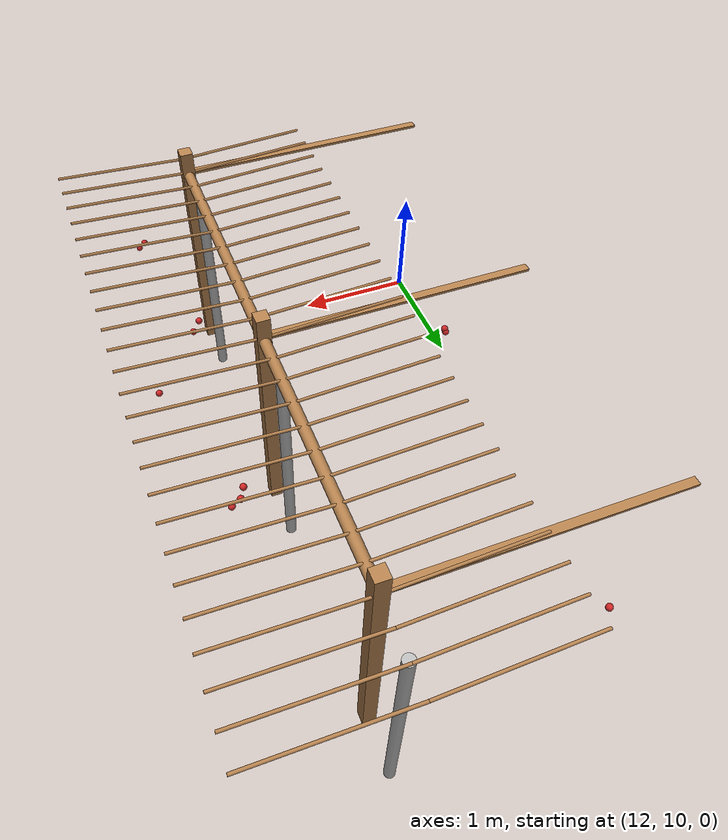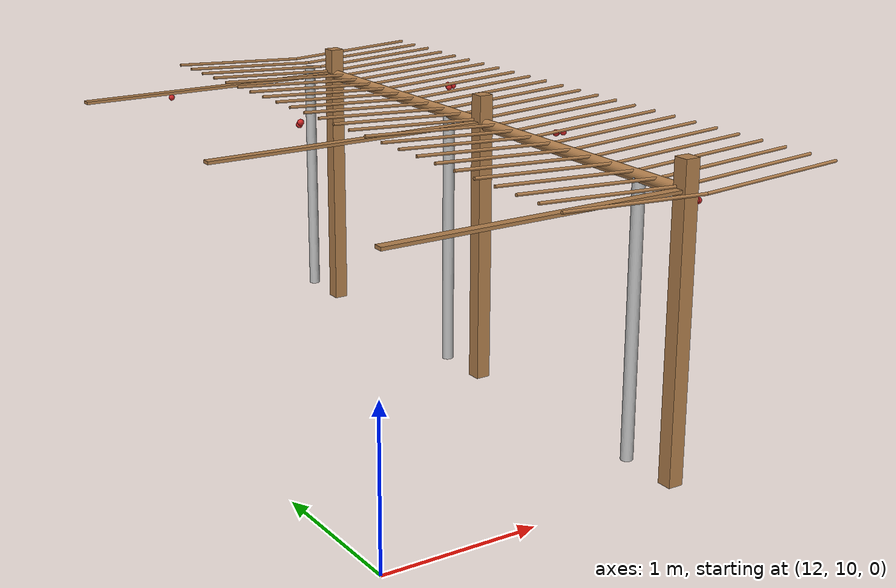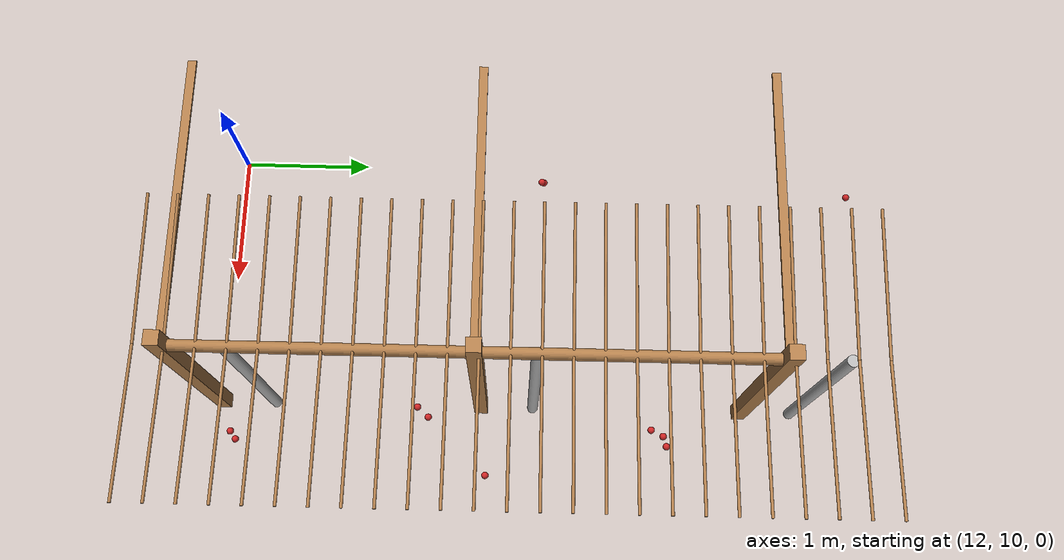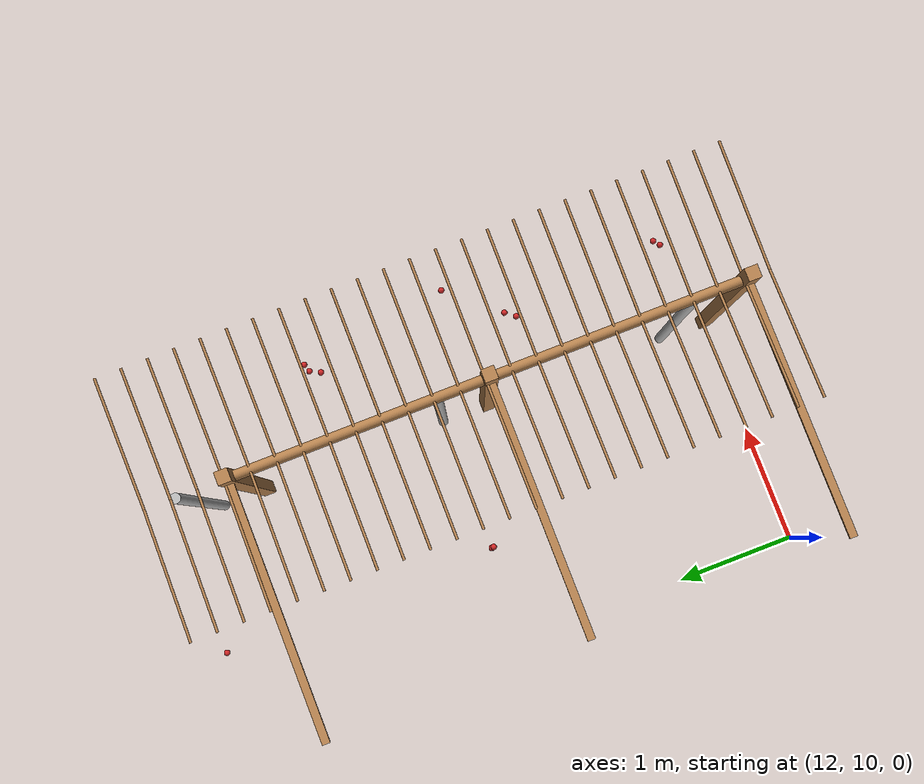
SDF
<sdf version="1.4">
 <model name="pergola">
  <include><name>post_82</name><pose>14.0 10.0 0 0 0 0</pose><uri>model://post</uri></include>
  <include><name>post_83</name><pose>14.0 12.0 0 0 0 0</pose><uri>model://post</uri></include>
  <include><name>post_84</name><pose>14.0 14.0 0 0 0 0</pose><uri>model://post</uri></include>
  <link name="beam_71">
   <pose>13.0 10.0 1.81 0 0 0</pose>
   <collision name="collision"><geometry><box><size>2.0 0.06 0.02</size></box></geometry></collision>
   <visual name="visual">
    <geometry><box><size>2.0 0.06 0.02</size></box></geometry>
    <material><script><name>Gazebo/Wood</name></script></material>
   </visual>
   <inertial>
    <mass>5</mass>
    <inertia>
     <ixx>0.0016666666666666668</ixx>
     <ixy>0.0</ixy>
     <ixz>0.0</ixz>
     <iyy>1.6681666666666664</iyy>
     <iyz>0.0</iyz>
     <izz>1.6668333333333332</izz>
    </inertia>
   </inertial>
  </link>
  <link name="beam_72">
   <pose>13.0 12.0 1.81 0 0 0</pose>
   <collision name="collision"><geometry><box><size>2.0 0.06 0.02</size></box></geometry></collision>
   <visual name="visual">
    <geometry><box><size>2.0 0.06 0.02</size></box></geometry>
    <material><script><name>Gazebo/Wood</name></script></material>
   </visual>
   <inertial>
    <mass>5</mass>
    <inertia>
     <ixx>0.0016666666666666668</ixx>
     <ixy>0.0</ixy>
     <ixz>0.0</ixz>
     <iyy>1.6681666666666664</iyy>
     <iyz>0.0</iyz>
     <izz>1.6668333333333332</izz>
    </inertia>
   </inertial>
  </link>
  <link name="beam_73">
   <pose>13.0 14.0 1.81 0 0 0</pose>
   <collision name="collision"><geometry><box><size>2.0 0.06 0.02</size></box></geometry></collision>
   <visual name="visual">
    <geometry><box><size>2.0 0.06 0.02</size></box></geometry>
    <material><script><name>Gazebo/Wood</name></script></material>
   </visual>
   <inertial>
    <mass>5</mass>
    <inertia>
     <ixx>0.0016666666666666668</ixx>
     <ixy>0.0</ixy>
     <ixz>0.0</ixz>
     <iyy>1.6681666666666664</iyy>
     <iyz>0.0</iyz>
     <izz>1.6668333333333332</izz>
    </inertia>
   </inertial>
  </link>
  <include><name>tree_75</name><pose>14.0 10.4 0 0 0 0</pose><uri>model://tree_trunk</uri></include>
  <include><name>tree_76</name><pose>14.0 12.4 0 0 0 0</pose><uri>model://tree_trunk</uri></include>
  <include><name>tree_77</name><pose>14.0 14.4 0 0 0 0</pose><uri>model://tree_trunk</uri></include>
  <link name="baseBranch_75">
   <pose>14.0 11.0 1.8 1.5707963267948966 0 0</pose>
   <collision name="collision">
    <geometry><cylinder><radius>0.04</radius><length>1.94</length></cylinder></geometry>
   </collision>
   <visual name="visual">
    <geometry><cylinder><radius>0.04</radius><length>1.94</length></cylinder></geometry>
    <material><script><name>Gazebo/WoodFloor</name></script></material>
   </visual>
   <inertial>
    <mass>10</mass>
    <inertia>
     <ixx>3.140333333333333</ixx>
     <ixy>0.0</ixy>
     <ixz>0.0</ixz>
     <iyy>3.140333333333333</iyy>
     <iyz>0.0</iyz>
     <izz>0.008</izz>
    </inertia>
   </inertial>
  </link>
  <link name="baseBranch_76">
   <pose>14.0 13.0 1.8 1.5707963267948966 0 0</pose>
   <collision name="collision">
    <geometry><cylinder><radius>0.04</radius><length>1.94</length></cylinder></geometry>
   </collision>
   <visual name="visual">
    <geometry><cylinder><radius>0.04</radius><length>1.94</length></cylinder></geometry>
    <material><script><name>Gazebo/WoodFloor</name></script></material>
   </visual>
   <inertial>
    <mass>10</mass>
    <inertia>
     <ixx>3.140333333333333</ixx>
     <ixy>0.0</ixy>
     <ixz>0.0</ixz>
     <iyy>3.140333333333333</iyy>
     <iyz>0.0</iyz>
     <izz>0.008</izz>
    </inertia>
   </inertial>
  </link>
  <link name="vine_1299">
   <pose>13.5 9.83 1.85 0 -1.5208379310729538 0</pose>
   <collision name="collision">
    <geometry><cylinder><radius>0.01</radius><length>1.0012492197250393</length></cylinder></geometry>
   </collision>
   <visual name="visual">
    <geometry><cylinder><radius>0.01</radius><length>1.0012492197250393</length></cylinder></geometry>
    <material><script><name>Gazebo/WoodFloor</name></script></material>
   </visual>
   <inertial>
    <mass>5</mass>
    <inertia>
     <ixx>0.41783333333333345</ixx>
     <ixy>0.0</ixy>
     <ixz>0.0</ixz>
     <iyy>0.41783333333333345</iyy>
     <iyz>0.0</iyz>
     <izz>0.00025</izz>
    </inertia>
   </inertial>
  </link>
  <link name="vine_1301">
   <pose>13.5 10.03 1.85 0 -1.5208379310729538 0</pose>
   <collision name="collision">
    <geometry><cylinder><radius>0.01</radius><length>1.0012492197250393</length></cylinder></geometry>
   </collision>
   <visual name="visual">
    <geometry><cylinder><radius>0.01</radius><length>1.0012492197250393</length></cylinder></geometry>
    <material><script><name>Gazebo/WoodFloor</name></script></material>
   </visual>
   <inertial>
    <mass>5</mass>
    <inertia>
     <ixx>0.41783333333333345</ixx>
     <ixy>0.0</ixy>
     <ixz>0.0</ixz>
     <iyy>0.41783333333333345</iyy>
     <iyz>0.0</iyz>
     <izz>0.00025</izz>
    </inertia>
   </inertial>
  </link>
  <link name="vine_1303">
   <pose>13.5 10.23 1.85 0 -1.5208379310729538 0</pose>
   <collision name="collision">
    <geometry><cylinder><radius>0.01</radius><length>1.0012492197250393</length></cylinder></geometry>
   </collision>
   <visual name="visual">
    <geometry><cylinder><radius>0.01</radius><length>1.0012492197250393</length></cylinder></geometry>
    <material><script><name>Gazebo/WoodFloor</name></script></material>
   </visual>
   <inertial>
    <mass>5</mass>
    <inertia>
     <ixx>0.41783333333333345</ixx>
     <ixy>0.0</ixy>
     <ixz>0.0</ixz>
     <iyy>0.41783333333333345</iyy>
     <iyz>0.0</iyz>
     <izz>0.00025</izz>
    </inertia>
   </inertial>
  </link>
  <link name="vine_1305">
   <pose>13.5 10.43 1.85 0 -1.5208379310729538 0</pose>
   <collision name="collision">
    <geometry><cylinder><radius>0.01</radius><length>1.0012492197250393</length></cylinder></geometry>
   </collision>
   <visual name="visual">
    <geometry><cylinder><radius>0.01</radius><length>1.0012492197250393</length></cylinder></geometry>
    <material><script><name>Gazebo/WoodFloor</name></script></material>
   </visual>
   <inertial>
    <mass>5</mass>
    <inertia>
     <ixx>0.41783333333333345</ixx>
     <ixy>0.0</ixy>
     <ixz>0.0</ixz>
     <iyy>0.41783333333333345</iyy>
     <iyz>0.0</iyz>
     <izz>0.00025</izz>
    </inertia>
   </inertial>
  </link>
  <link name="vine_1307">
   <pose>13.5 10.63 1.85 0 -1.5208379310729538 0</pose>
   <collision name="collision">
    <geometry><cylinder><radius>0.01</radius><length>1.0012492197250393</length></cylinder></geometry>
   </collision>
   <visual name="visual">
    <geometry><cylinder><radius>0.01</radius><length>1.0012492197250393</length></cylinder></geometry>
    <material><script><name>Gazebo/WoodFloor</name></script></material>
   </visual>
   <inertial>
    <mass>5</mass>
    <inertia>
     <ixx>0.41783333333333345</ixx>
     <ixy>0.0</ixy>
     <ixz>0.0</ixz>
     <iyy>0.41783333333333345</iyy>
     <iyz>0.0</iyz>
     <izz>0.00025</izz>
    </inertia>
   </inertial>
  </link>
  <link name="vine_1309">
   <pose>13.5 10.83 1.85 0 -1.5208379310729538 0</pose>
   <collision name="collision">
    <geometry><cylinder><radius>0.01</radius><length>1.0012492197250393</length></cylinder></geometry>
   </collision>
   <visual name="visual">
    <geometry><cylinder><radius>0.01</radius><length>1.0012492197250393</length></cylinder></geometry>
    <material><script><name>Gazebo/WoodFloor</name></script></material>
   </visual>
   <inertial>
    <mass>5</mass>
    <inertia>
     <ixx>0.41783333333333345</ixx>
     <ixy>0.0</ixy>
     <ixz>0.0</ixz>
     <iyy>0.41783333333333345</iyy>
     <iyz>0.0</iyz>
     <izz>0.00025</izz>
    </inertia>
   </inertial>
  </link>
  <link name="vine_1311">
   <pose>13.5 11.03 1.85 0 -1.5208379310729538 0</pose>
   <collision name="collision">
    <geometry><cylinder><radius>0.01</radius><length>1.0012492197250393</length></cylinder></geometry>
   </collision>
   <visual name="visual">
    <geometry><cylinder><radius>0.01</radius><length>1.0012492197250393</length></cylinder></geometry>
    <material><script><name>Gazebo/WoodFloor</name></script></material>
   </visual>
   <inertial>
    <mass>5</mass>
    <inertia>
     <ixx>0.41783333333333345</ixx>
     <ixy>0.0</ixy>
     <ixz>0.0</ixz>
     <iyy>0.41783333333333345</iyy>
     <iyz>0.0</iyz>
     <izz>0.00025</izz>
    </inertia>
   </inertial>
  </link>
  <link name="vine_1313">
   <pose>13.5 11.23 1.85 0 -1.5208379310729538 0</pose>
   <collision name="collision">
    <geometry><cylinder><radius>0.01</radius><length>1.0012492197250393</length></cylinder></geometry>
   </collision>
   <visual name="visual">
    <geometry><cylinder><radius>0.01</radius><length>1.0012492197250393</length></cylinder></geometry>
    <material><script><name>Gazebo/WoodFloor</name></script></material>
   </visual>
   <inertial>
    <mass>5</mass>
    <inertia>
     <ixx>0.41783333333333345</ixx>
     <ixy>0.0</ixy>
     <ixz>0.0</ixz>
     <iyy>0.41783333333333345</iyy>
     <iyz>0.0</iyz>
     <izz>0.00025</izz>
    </inertia>
   </inertial>
  </link>
  <link name="vine_1315">
   <pose>13.5 11.43 1.85 0 -1.5208379310729538 0</pose>
   <collision name="collision">
    <geometry><cylinder><radius>0.01</radius><length>1.0012492197250393</length></cylinder></geometry>
   </collision>
   <visual name="visual">
    <geometry><cylinder><radius>0.01</radius><length>1.0012492197250393</length></cylinder></geometry>
    <material><script><name>Gazebo/WoodFloor</name></script></material>
   </visual>
   <inertial>
    <mass>5</mass>
    <inertia>
     <ixx>0.41783333333333345</ixx>
     <ixy>0.0</ixy>
     <ixz>0.0</ixz>
     <iyy>0.41783333333333345</iyy>
     <iyz>0.0</iyz>
     <izz>0.00025</izz>
    </inertia>
   </inertial>
  </link>
  <link name="vine_1317">
   <pose>13.5 11.63 1.85 0 -1.5208379310729538 0</pose>
   <collision name="collision">
    <geometry><cylinder><radius>0.01</radius><length>1.0012492197250393</length></cylinder></geometry>
   </collision>
   <visual name="visual">
    <geometry><cylinder><radius>0.01</radius><length>1.0012492197250393</length></cylinder></geometry>
    <material><script><name>Gazebo/WoodFloor</name></script></material>
   </visual>
   <inertial>
    <mass>5</mass>
    <inertia>
     <ixx>0.41783333333333345</ixx>
     <ixy>0.0</ixy>
     <ixz>0.0</ixz>
     <iyy>0.41783333333333345</iyy>
     <iyz>0.0</iyz>
     <izz>0.00025</izz>
    </inertia>
   </inertial>
  </link>
  <link name="vine_1319">
   <pose>13.5 11.83 1.85 0 -1.5208379310729538 0</pose>
   <collision name="collision">
    <geometry><cylinder><radius>0.01</radius><length>1.0012492197250393</length></cylinder></geometry>
   </collision>
   <visual name="visual">
    <geometry><cylinder><radius>0.01</radius><length>1.0012492197250393</length></cylinder></geometry>
    <material><script><name>Gazebo/WoodFloor</name></script></material>
   </visual>
   <inertial>
    <mass>5</mass>
    <inertia>
     <ixx>0.41783333333333345</ixx>
     <ixy>0.0</ixy>
     <ixz>0.0</ixz>
     <iyy>0.41783333333333345</iyy>
     <iyz>0.0</iyz>
     <izz>0.00025</izz>
    </inertia>
   </inertial>
  </link>
  <link name="vine_1321">
   <pose>13.5 12.03 1.85 0 -1.5208379310729538 0</pose>
   <collision name="collision">
    <geometry><cylinder><radius>0.01</radius><length>1.0012492197250393</length></cylinder></geometry>
   </collision>
   <visual name="visual">
    <geometry><cylinder><radius>0.01</radius><length>1.0012492197250393</length></cylinder></geometry>
    <material><script><name>Gazebo/WoodFloor</name></script></material>
   </visual>
   <inertial>
    <mass>5</mass>
    <inertia>
     <ixx>0.41783333333333345</ixx>
     <ixy>0.0</ixy>
     <ixz>0.0</ixz>
     <iyy>0.41783333333333345</iyy>
     <iyz>0.0</iyz>
     <izz>0.00025</izz>
    </inertia>
   </inertial>
  </link>
  <link name="vine_1323">
   <pose>13.5 12.23 1.85 0 -1.5208379310729538 0</pose>
   <collision name="collision">
    <geometry><cylinder><radius>0.01</radius><length>1.0012492197250393</length></cylinder></geometry>
   </collision>
   <visual name="visual">
    <geometry><cylinder><radius>0.01</radius><length>1.0012492197250393</length></cylinder></geometry>
    <material><script><name>Gazebo/WoodFloor</name></script></material>
   </visual>
   <inertial>
    <mass>5</mass>
    <inertia>
     <ixx>0.41783333333333345</ixx>
     <ixy>0.0</ixy>
     <ixz>0.0</ixz>
     <iyy>0.41783333333333345</iyy>
     <iyz>0.0</iyz>
     <izz>0.00025</izz>
    </inertia>
   </inertial>
  </link>
  <link name="vine_1325">
   <pose>13.5 12.43 1.85 0 -1.5208379310729538 0</pose>
   <collision name="collision">
    <geometry><cylinder><radius>0.01</radius><length>1.0012492197250393</length></cylinder></geometry>
   </collision>
   <visual name="visual">
    <geometry><cylinder><radius>0.01</radius><length>1.0012492197250393</length></cylinder></geometry>
    <material><script><name>Gazebo/WoodFloor</name></script></material>
   </visual>
   <inertial>
    <mass>5</mass>
    <inertia>
     <ixx>0.41783333333333345</ixx>
     <ixy>0.0</ixy>
     <ixz>0.0</ixz>
     <iyy>0.41783333333333345</iyy>
     <iyz>0.0</iyz>
     <izz>0.00025</izz>
    </inertia>
   </inertial>
  </link>
  <link name="vine_1327">
   <pose>13.5 12.63 1.85 0 -1.5208379310729538 0</pose>
   <collision name="collision">
    <geometry><cylinder><radius>0.01</radius><length>1.0012492197250393</length></cylinder></geometry>
   </collision>
   <visual name="visual">
    <geometry><cylinder><radius>0.01</radius><length>1.0012492197250393</length></cylinder></geometry>
    <material><script><name>Gazebo/WoodFloor</name></script></material>
   </visual>
   <inertial>
    <mass>5</mass>
    <inertia>
     <ixx>0.41783333333333345</ixx>
     <ixy>0.0</ixy>
     <ixz>0.0</ixz>
     <iyy>0.41783333333333345</iyy>
     <iyz>0.0</iyz>
     <izz>0.00025</izz>
    </inertia>
   </inertial>
  </link>
  <link name="vine_1329">
   <pose>13.5 12.83 1.85 0 -1.5208379310729538 0</pose>
   <collision name="collision">
    <geometry><cylinder><radius>0.01</radius><length>1.0012492197250393</length></cylinder></geometry>
   </collision>
   <visual name="visual">
    <geometry><cylinder><radius>0.01</radius><length>1.0012492197250393</length></cylinder></geometry>
    <material><script><name>Gazebo/WoodFloor</name></script></material>
   </visual>
   <inertial>
    <mass>5</mass>
    <inertia>
     <ixx>0.41783333333333345</ixx>
     <ixy>0.0</ixy>
     <ixz>0.0</ixz>
     <iyy>0.41783333333333345</iyy>
     <iyz>0.0</iyz>
     <izz>0.00025</izz>
    </inertia>
   </inertial>
  </link>
  <link name="vine_1331">
   <pose>13.5 13.03 1.85 0 -1.5208379310729538 0</pose>
   <collision name="collision">
    <geometry><cylinder><radius>0.01</radius><length>1.0012492197250393</length></cylinder></geometry>
   </collision>
   <visual name="visual">
    <geometry><cylinder><radius>0.01</radius><length>1.0012492197250393</length></cylinder></geometry>
    <material><script><name>Gazebo/WoodFloor</name></script></material>
   </visual>
   <inertial>
    <mass>5</mass>
    <inertia>
     <ixx>0.41783333333333345</ixx>
     <ixy>0.0</ixy>
     <ixz>0.0</ixz>
     <iyy>0.41783333333333345</iyy>
     <iyz>0.0</iyz>
     <izz>0.00025</izz>
    </inertia>
   </inertial>
  </link>
  <link name="vine_1333">
   <pose>13.5 13.23 1.85 0 -1.5208379310729538 0</pose>
   <collision name="collision">
    <geometry><cylinder><radius>0.01</radius><length>1.0012492197250393</length></cylinder></geometry>
   </collision>
   <visual name="visual">
    <geometry><cylinder><radius>0.01</radius><length>1.0012492197250393</length></cylinder></geometry>
    <material><script><name>Gazebo/WoodFloor</name></script></material>
   </visual>
   <inertial>
    <mass>5</mass>
    <inertia>
     <ixx>0.41783333333333345</ixx>
     <ixy>0.0</ixy>
     <ixz>0.0</ixz>
     <iyy>0.41783333333333345</iyy>
     <iyz>0.0</iyz>
     <izz>0.00025</izz>
    </inertia>
   </inertial>
  </link>
  <link name="vine_1335">
   <pose>13.5 13.43 1.85 0 -1.5208379310729538 0</pose>
   <collision name="collision">
    <geometry><cylinder><radius>0.01</radius><length>1.0012492197250393</length></cylinder></geometry>
   </collision>
   <visual name="visual">
    <geometry><cylinder><radius>0.01</radius><length>1.0012492197250393</length></cylinder></geometry>
    <material><script><name>Gazebo/WoodFloor</name></script></material>
   </visual>
   <inertial>
    <mass>5</mass>
    <inertia>
     <ixx>0.41783333333333345</ixx>
     <ixy>0.0</ixy>
     <ixz>0.0</ixz>
     <iyy>0.41783333333333345</iyy>
     <iyz>0.0</iyz>
     <izz>0.00025</izz>
    </inertia>
   </inertial>
  </link>
  <link name="vine_1337">
   <pose>13.5 13.63 1.85 0 -1.5208379310729538 0</pose>
   <collision name="collision">
    <geometry><cylinder><radius>0.01</radius><length>1.0012492197250393</length></cylinder></geometry>
   </collision>
   <visual name="visual">
    <geometry><cylinder><radius>0.01</radius><length>1.0012492197250393</length></cylinder></geometry>
    <material><script><name>Gazebo/WoodFloor</name></script></material>
   </visual>
   <inertial>
    <mass>5</mass>
    <inertia>
     <ixx>0.41783333333333345</ixx>
     <ixy>0.0</ixy>
     <ixz>0.0</ixz>
     <iyy>0.41783333333333345</iyy>
     <iyz>0.0</iyz>
     <izz>0.00025</izz>
    </inertia>
   </inertial>
  </link>
  <link name="vine_1339">
   <pose>13.5 13.83 1.85 0 -1.5208379310729538 0</pose>
   <collision name="collision">
    <geometry><cylinder><radius>0.01</radius><length>1.0012492197250393</length></cylinder></geometry>
   </collision>
   <visual name="visual">
    <geometry><cylinder><radius>0.01</radius><length>1.0012492197250393</length></cylinder></geometry>
    <material><script><name>Gazebo/WoodFloor</name></script></material>
   </visual>
   <inertial>
    <mass>5</mass>
    <inertia>
     <ixx>0.41783333333333345</ixx>
     <ixy>0.0</ixy>
     <ixz>0.0</ixz>
     <iyy>0.41783333333333345</iyy>
     <iyz>0.0</iyz>
     <izz>0.00025</izz>
    </inertia>
   </inertial>
  </link>
  <link name="vine_1341">
   <pose>13.5 14.03 1.85 0 -1.5208379310729538 0</pose>
   <collision name="collision">
    <geometry><cylinder><radius>0.01</radius><length>1.0012492197250393</length></cylinder></geometry>
   </collision>
   <visual name="visual">
    <geometry><cylinder><radius>0.01</radius><length>1.0012492197250393</length></cylinder></geometry>
    <material><script><name>Gazebo/WoodFloor</name></script></material>
   </visual>
   <inertial>
    <mass>5</mass>
    <inertia>
     <ixx>0.41783333333333345</ixx>
     <ixy>0.0</ixy>
     <ixz>0.0</ixz>
     <iyy>0.41783333333333345</iyy>
     <iyz>0.0</iyz>
     <izz>0.00025</izz>
    </inertia>
   </inertial>
  </link>
  <link name="vine_1343">
   <pose>13.5 14.23 1.85 0 -1.5208379310729538 0</pose>
   <collision name="collision">
    <geometry><cylinder><radius>0.01</radius><length>1.0012492197250393</length></cylinder></geometry>
   </collision>
   <visual name="visual">
    <geometry><cylinder><radius>0.01</radius><length>1.0012492197250393</length></cylinder></geometry>
    <material><script><name>Gazebo/WoodFloor</name></script></material>
   </visual>
   <inertial>
    <mass>5</mass>
    <inertia>
     <ixx>0.41783333333333345</ixx>
     <ixy>0.0</ixy>
     <ixz>0.0</ixz>
     <iyy>0.41783333333333345</iyy>
     <iyz>0.0</iyz>
     <izz>0.00025</izz>
    </inertia>
   </inertial>
  </link>
  <link name="vine_1345">
   <pose>13.5 14.43 1.85 0 -1.5208379310729538 0</pose>
   <collision name="collision">
    <geometry><cylinder><radius>0.01</radius><length>1.0012492197250393</length></cylinder></geometry>
   </collision>
   <visual name="visual">
    <geometry><cylinder><radius>0.01</radius><length>1.0012492197250393</length></cylinder></geometry>
    <material><script><name>Gazebo/WoodFloor</name></script></material>
   </visual>
   <inertial>
    <mass>5</mass>
    <inertia>
     <ixx>0.41783333333333345</ixx>
     <ixy>0.0</ixy>
     <ixz>0.0</ixz>
     <iyy>0.41783333333333345</iyy>
     <iyz>0.0</iyz>
     <izz>0.00025</izz>
    </inertia>
   </inertial>
  </link>
  <link name="vine_1347">
   <pose>13.5 14.63 1.85 0 -1.5208379310729538 0</pose>
   <collision name="collision">
    <geometry><cylinder><radius>0.01</radius><length>1.0012492197250393</length></cylinder></geometry>
   </collision>
   <visual name="visual">
    <geometry><cylinder><radius>0.01</radius><length>1.0012492197250393</length></cylinder></geometry>
    <material><script><name>Gazebo/WoodFloor</name></script></material>
   </visual>
   <inertial>
    <mass>5</mass>
    <inertia>
     <ixx>0.41783333333333345</ixx>
     <ixy>0.0</ixy>
     <ixz>0.0</ixz>
     <iyy>0.41783333333333345</iyy>
     <iyz>0.0</iyz>
     <izz>0.00025</izz>
    </inertia>
   </inertial>
  </link>
  <link name="vine_1498">
   <pose>14.5 9.83 1.85 0 1.5208379310729538 0</pose>
   <collision name="collision">
    <geometry><cylinder><radius>0.01</radius><length>1.0012492197250393</length></cylinder></geometry>
   </collision>
   <visual name="visual">
    <geometry><cylinder><radius>0.01</radius><length>1.0012492197250393</length></cylinder></geometry>
    <material><script><name>Gazebo/WoodFloor</name></script></material>
   </visual>
   <inertial>
    <mass>5</mass>
    <inertia>
     <ixx>0.41783333333333345</ixx>
     <ixy>0.0</ixy>
     <ixz>0.0</ixz>
     <iyy>0.41783333333333345</iyy>
     <iyz>0.0</iyz>
     <izz>0.00025</izz>
    </inertia>
   </inertial>
  </link>
  <link name="vine_1500">
   <pose>14.5 10.03 1.85 0 1.5208379310729538 0</pose>
   <collision name="collision">
    <geometry><cylinder><radius>0.01</radius><length>1.0012492197250393</length></cylinder></geometry>
   </collision>
   <visual name="visual">
    <geometry><cylinder><radius>0.01</radius><length>1.0012492197250393</length></cylinder></geometry>
    <material><script><name>Gazebo/WoodFloor</name></script></material>
   </visual>
   <inertial>
    <mass>5</mass>
    <inertia>
     <ixx>0.41783333333333345</ixx>
     <ixy>0.0</ixy>
     <ixz>0.0</ixz>
     <iyy>0.41783333333333345</iyy>
     <iyz>0.0</iyz>
     <izz>0.00025</izz>
    </inertia>
   </inertial>
  </link>
  <link name="vine_1502">
   <pose>14.5 10.23 1.85 0 1.5208379310729538 0</pose>
   <collision name="collision">
    <geometry><cylinder><radius>0.01</radius><length>1.0012492197250393</length></cylinder></geometry>
   </collision>
   <visual name="visual">
    <geometry><cylinder><radius>0.01</radius><length>1.0012492197250393</length></cylinder></geometry>
    <material><script><name>Gazebo/WoodFloor</name></script></material>
   </visual>
   <inertial>
    <mass>5</mass>
    <inertia>
     <ixx>0.41783333333333345</ixx>
     <ixy>0.0</ixy>
     <ixz>0.0</ixz>
     <iyy>0.41783333333333345</iyy>
     <iyz>0.0</iyz>
     <izz>0.00025</izz>
    </inertia>
   </inertial>
  </link>
  <link name="vine_1504">
   <pose>14.5 10.43 1.85 0 1.5208379310729538 0</pose>
   <collision name="collision">
    <geometry><cylinder><radius>0.01</radius><length>1.0012492197250393</length></cylinder></geometry>
   </collision>
   <visual name="visual">
    <geometry><cylinder><radius>0.01</radius><length>1.0012492197250393</length></cylinder></geometry>
    <material><script><name>Gazebo/WoodFloor</name></script></material>
   </visual>
   <inertial>
    <mass>5</mass>
    <inertia>
     <ixx>0.41783333333333345</ixx>
     <ixy>0.0</ixy>
     <ixz>0.0</ixz>
     <iyy>0.41783333333333345</iyy>
     <iyz>0.0</iyz>
     <izz>0.00025</izz>
    </inertia>
   </inertial>
  </link>
  <link name="vine_1506">
   <pose>14.5 10.63 1.85 0 1.5208379310729538 0</pose>
   <collision name="collision">
    <geometry><cylinder><radius>0.01</radius><length>1.0012492197250393</length></cylinder></geometry>
   </collision>
   <visual name="visual">
    <geometry><cylinder><radius>0.01</radius><length>1.0012492197250393</length></cylinder></geometry>
    <material><script><name>Gazebo/WoodFloor</name></script></material>
   </visual>
   <inertial>
    <mass>5</mass>
    <inertia>
     <ixx>0.41783333333333345</ixx>
     <ixy>0.0</ixy>
     <ixz>0.0</ixz>
     <iyy>0.41783333333333345</iyy>
     <iyz>0.0</iyz>
     <izz>0.00025</izz>
    </inertia>
   </inertial>
  </link>
  <link name="vine_1508">
   <pose>14.5 10.83 1.85 0 1.5208379310729538 0</pose>
   <collision name="collision">
    <geometry><cylinder><radius>0.01</radius><length>1.0012492197250393</length></cylinder></geometry>
   </collision>
   <visual name="visual">
    <geometry><cylinder><radius>0.01</radius><length>1.0012492197250393</length></cylinder></geometry>
    <material><script><name>Gazebo/WoodFloor</name></script></material>
   </visual>
   <inertial>
    <mass>5</mass>
    <inertia>
     <ixx>0.41783333333333345</ixx>
     <ixy>0.0</ixy>
     <ixz>0.0</ixz>
     <iyy>0.41783333333333345</iyy>
     <iyz>0.0</iyz>
     <izz>0.00025</izz>
    </inertia>
   </inertial>
  </link>
  <link name="vine_1510">
   <pose>14.5 11.03 1.85 0 1.5208379310729538 0</pose>
   <collision name="collision">
    <geometry><cylinder><radius>0.01</radius><length>1.0012492197250393</length></cylinder></geometry>
   </collision>
   <visual name="visual">
    <geometry><cylinder><radius>0.01</radius><length>1.0012492197250393</length></cylinder></geometry>
    <material><script><name>Gazebo/WoodFloor</name></script></material>
   </visual>
   <inertial>
    <mass>5</mass>
    <inertia>
     <ixx>0.41783333333333345</ixx>
     <ixy>0.0</ixy>
     <ixz>0.0</ixz>
     <iyy>0.41783333333333345</iyy>
     <iyz>0.0</iyz>
     <izz>0.00025</izz>
    </inertia>
   </inertial>
  </link>
  <link name="vine_1512">
   <pose>14.5 11.23 1.85 0 1.5208379310729538 0</pose>
   <collision name="collision">
    <geometry><cylinder><radius>0.01</radius><length>1.0012492197250393</length></cylinder></geometry>
   </collision>
   <visual name="visual">
    <geometry><cylinder><radius>0.01</radius><length>1.0012492197250393</length></cylinder></geometry>
    <material><script><name>Gazebo/WoodFloor</name></script></material>
   </visual>
   <inertial>
    <mass>5</mass>
    <inertia>
     <ixx>0.41783333333333345</ixx>
     <ixy>0.0</ixy>
     <ixz>0.0</ixz>
     <iyy>0.41783333333333345</iyy>
     <iyz>0.0</iyz>
     <izz>0.00025</izz>
    </inertia>
   </inertial>
  </link>
  <link name="vine_1514">
   <pose>14.5 11.43 1.85 0 1.5208379310729538 0</pose>
   <collision name="collision">
    <geometry><cylinder><radius>0.01</radius><length>1.0012492197250393</length></cylinder></geometry>
   </collision>
   <visual name="visual">
    <geometry><cylinder><radius>0.01</radius><length>1.0012492197250393</length></cylinder></geometry>
    <material><script><name>Gazebo/WoodFloor</name></script></material>
   </visual>
   <inertial>
    <mass>5</mass>
    <inertia>
     <ixx>0.41783333333333345</ixx>
     <ixy>0.0</ixy>
     <ixz>0.0</ixz>
     <iyy>0.41783333333333345</iyy>
     <iyz>0.0</iyz>
     <izz>0.00025</izz>
    </inertia>
   </inertial>
  </link>
  <link name="vine_1516">
   <pose>14.5 11.63 1.85 0 1.5208379310729538 0</pose>
   <collision name="collision">
    <geometry><cylinder><radius>0.01</radius><length>1.0012492197250393</length></cylinder></geometry>
   </collision>
   <visual name="visual">
    <geometry><cylinder><radius>0.01</radius><length>1.0012492197250393</length></cylinder></geometry>
    <material><script><name>Gazebo/WoodFloor</name></script></material>
   </visual>
   <inertial>
    <mass>5</mass>
    <inertia>
     <ixx>0.41783333333333345</ixx>
     <ixy>0.0</ixy>
     <ixz>0.0</ixz>
     <iyy>0.41783333333333345</iyy>
     <iyz>0.0</iyz>
     <izz>0.00025</izz>
    </inertia>
   </inertial>
  </link>
  <link name="vine_1518">
   <pose>14.5 11.83 1.85 0 1.5208379310729538 0</pose>
   <collision name="collision">
    <geometry><cylinder><radius>0.01</radius><length>1.0012492197250393</length></cylinder></geometry>
   </collision>
   <visual name="visual">
    <geometry><cylinder><radius>0.01</radius><length>1.0012492197250393</length></cylinder></geometry>
    <material><script><name>Gazebo/WoodFloor</name></script></material>
   </visual>
   <inertial>
    <mass>5</mass>
    <inertia>
     <ixx>0.41783333333333345</ixx>
     <ixy>0.0</ixy>
     <ixz>0.0</ixz>
     <iyy>0.41783333333333345</iyy>
     <iyz>0.0</iyz>
     <izz>0.00025</izz>
    </inertia>
   </inertial>
  </link>
  <link name="vine_1520">
   <pose>14.5 12.03 1.85 0 1.5208379310729538 0</pose>
   <collision name="collision">
    <geometry><cylinder><radius>0.01</radius><length>1.0012492197250393</length></cylinder></geometry>
   </collision>
   <visual name="visual">
    <geometry><cylinder><radius>0.01</radius><length>1.0012492197250393</length></cylinder></geometry>
    <material><script><name>Gazebo/WoodFloor</name></script></material>
   </visual>
   <inertial>
    <mass>5</mass>
    <inertia>
     <ixx>0.41783333333333345</ixx>
     <ixy>0.0</ixy>
     <ixz>0.0</ixz>
     <iyy>0.41783333333333345</iyy>
     <iyz>0.0</iyz>
     <izz>0.00025</izz>
    </inertia>
   </inertial>
  </link>
  <link name="vine_1522">
   <pose>14.5 12.23 1.85 0 1.5208379310729538 0</pose>
   <collision name="collision">
    <geometry><cylinder><radius>0.01</radius><length>1.0012492197250393</length></cylinder></geometry>
   </collision>
   <visual name="visual">
    <geometry><cylinder><radius>0.01</radius><length>1.0012492197250393</length></cylinder></geometry>
    <material><script><name>Gazebo/WoodFloor</name></script></material>
   </visual>
   <inertial>
    <mass>5</mass>
    <inertia>
     <ixx>0.41783333333333345</ixx>
     <ixy>0.0</ixy>
     <ixz>0.0</ixz>
     <iyy>0.41783333333333345</iyy>
     <iyz>0.0</iyz>
     <izz>0.00025</izz>
    </inertia>
   </inertial>
  </link>
  <link name="vine_1524">
   <pose>14.5 12.43 1.85 0 1.5208379310729538 0</pose>
   <collision name="collision">
    <geometry><cylinder><radius>0.01</radius><length>1.0012492197250393</length></cylinder></geometry>
   </collision>
   <visual name="visual">
    <geometry><cylinder><radius>0.01</radius><length>1.0012492197250393</length></cylinder></geometry>
    <material><script><name>Gazebo/WoodFloor</name></script></material>
   </visual>
   <inertial>
    <mass>5</mass>
    <inertia>
     <ixx>0.41783333333333345</ixx>
     <ixy>0.0</ixy>
     <ixz>0.0</ixz>
     <iyy>0.41783333333333345</iyy>
     <iyz>0.0</iyz>
     <izz>0.00025</izz>
    </inertia>
   </inertial>
  </link>
  <link name="vine_1526">
   <pose>14.5 12.63 1.85 0 1.5208379310729538 0</pose>
   <collision name="collision">
    <geometry><cylinder><radius>0.01</radius><length>1.0012492197250393</length></cylinder></geometry>
   </collision>
   <visual name="visual">
    <geometry><cylinder><radius>0.01</radius><length>1.0012492197250393</length></cylinder></geometry>
    <material><script><name>Gazebo/WoodFloor</name></script></material>
   </visual>
   <inertial>
    <mass>5</mass>
    <inertia>
     <ixx>0.41783333333333345</ixx>
     <ixy>0.0</ixy>
     <ixz>0.0</ixz>
     <iyy>0.41783333333333345</iyy>
     <iyz>0.0</iyz>
     <izz>0.00025</izz>
    </inertia>
   </inertial>
  </link>
  <link name="vine_1528">
   <pose>14.5 12.83 1.85 0 1.5208379310729538 0</pose>
   <collision name="collision">
    <geometry><cylinder><radius>0.01</radius><length>1.0012492197250393</length></cylinder></geometry>
   </collision>
   <visual name="visual">
    <geometry><cylinder><radius>0.01</radius><length>1.0012492197250393</length></cylinder></geometry>
    <material><script><name>Gazebo/WoodFloor</name></script></material>
   </visual>
   <inertial>
    <mass>5</mass>
    <inertia>
     <ixx>0.41783333333333345</ixx>
     <ixy>0.0</ixy>
     <ixz>0.0</ixz>
     <iyy>0.41783333333333345</iyy>
     <iyz>0.0</iyz>
     <izz>0.00025</izz>
    </inertia>
   </inertial>
  </link>
  <link name="vine_1530">
   <pose>14.5 13.03 1.85 0 1.5208379310729538 0</pose>
   <collision name="collision">
    <geometry><cylinder><radius>0.01</radius><length>1.0012492197250393</length></cylinder></geometry>
   </collision>
   <visual name="visual">
    <geometry><cylinder><radius>0.01</radius><length>1.0012492197250393</length></cylinder></geometry>
    <material><script><name>Gazebo/WoodFloor</name></script></material>
   </visual>
   <inertial>
    <mass>5</mass>
    <inertia>
     <ixx>0.41783333333333345</ixx>
     <ixy>0.0</ixy>
     <ixz>0.0</ixz>
     <iyy>0.41783333333333345</iyy>
     <iyz>0.0</iyz>
     <izz>0.00025</izz>
    </inertia>
   </inertial>
  </link>
  <link name="vine_1532">
   <pose>14.5 13.23 1.85 0 1.5208379310729538 0</pose>
   <collision name="collision">
    <geometry><cylinder><radius>0.01</radius><length>1.0012492197250393</length></cylinder></geometry>
   </collision>
   <visual name="visual">
    <geometry><cylinder><radius>0.01</radius><length>1.0012492197250393</length></cylinder></geometry>
    <material><script><name>Gazebo/WoodFloor</name></script></material>
   </visual>
   <inertial>
    <mass>5</mass>
    <inertia>
     <ixx>0.41783333333333345</ixx>
     <ixy>0.0</ixy>
     <ixz>0.0</ixz>
     <iyy>0.41783333333333345</iyy>
     <iyz>0.0</iyz>
     <izz>0.00025</izz>
    </inertia>
   </inertial>
  </link>
  <link name="vine_1534">
   <pose>14.5 13.43 1.85 0 1.5208379310729538 0</pose>
   <collision name="collision">
    <geometry><cylinder><radius>0.01</radius><length>1.0012492197250393</length></cylinder></geometry>
   </collision>
   <visual name="visual">
    <geometry><cylinder><radius>0.01</radius><length>1.0012492197250393</length></cylinder></geometry>
    <material><script><name>Gazebo/WoodFloor</name></script></material>
   </visual>
   <inertial>
    <mass>5</mass>
    <inertia>
     <ixx>0.41783333333333345</ixx>
     <ixy>0.0</ixy>
     <ixz>0.0</ixz>
     <iyy>0.41783333333333345</iyy>
     <iyz>0.0</iyz>
     <izz>0.00025</izz>
    </inertia>
   </inertial>
  </link>
  <link name="vine_1536">
   <pose>14.5 13.63 1.85 0 1.5208379310729538 0</pose>
   <collision name="collision">
    <geometry><cylinder><radius>0.01</radius><length>1.0012492197250393</length></cylinder></geometry>
   </collision>
   <visual name="visual">
    <geometry><cylinder><radius>0.01</radius><length>1.0012492197250393</length></cylinder></geometry>
    <material><script><name>Gazebo/WoodFloor</name></script></material>
   </visual>
   <inertial>
    <mass>5</mass>
    <inertia>
     <ixx>0.41783333333333345</ixx>
     <ixy>0.0</ixy>
     <ixz>0.0</ixz>
     <iyy>0.41783333333333345</iyy>
     <iyz>0.0</iyz>
     <izz>0.00025</izz>
    </inertia>
   </inertial>
  </link>
  <link name="vine_1538">
   <pose>14.5 13.83 1.85 0 1.5208379310729538 0</pose>
   <collision name="collision">
    <geometry><cylinder><radius>0.01</radius><length>1.0012492197250393</length></cylinder></geometry>
   </collision>
   <visual name="visual">
    <geometry><cylinder><radius>0.01</radius><length>1.0012492197250393</length></cylinder></geometry>
    <material><script><name>Gazebo/WoodFloor</name></script></material>
   </visual>
   <inertial>
    <mass>5</mass>
    <inertia>
     <ixx>0.41783333333333345</ixx>
     <ixy>0.0</ixy>
     <ixz>0.0</ixz>
     <iyy>0.41783333333333345</iyy>
     <iyz>0.0</iyz>
     <izz>0.00025</izz>
    </inertia>
   </inertial>
  </link>
  <link name="vine_1540">
   <pose>14.5 14.03 1.85 0 1.5208379310729538 0</pose>
   <collision name="collision">
    <geometry><cylinder><radius>0.01</radius><length>1.0012492197250393</length></cylinder></geometry>
   </collision>
   <visual name="visual">
    <geometry><cylinder><radius>0.01</radius><length>1.0012492197250393</length></cylinder></geometry>
    <material><script><name>Gazebo/WoodFloor</name></script></material>
   </visual>
   <inertial>
    <mass>5</mass>
    <inertia>
     <ixx>0.41783333333333345</ixx>
     <ixy>0.0</ixy>
     <ixz>0.0</ixz>
     <iyy>0.41783333333333345</iyy>
     <iyz>0.0</iyz>
     <izz>0.00025</izz>
    </inertia>
   </inertial>
  </link>
  <link name="vine_1542">
   <pose>14.5 14.23 1.85 0 1.5208379310729538 0</pose>
   <collision name="collision">
    <geometry><cylinder><radius>0.01</radius><length>1.0012492197250393</length></cylinder></geometry>
   </collision>
   <visual name="visual">
    <geometry><cylinder><radius>0.01</radius><length>1.0012492197250393</length></cylinder></geometry>
    <material><script><name>Gazebo/WoodFloor</name></script></material>
   </visual>
   <inertial>
    <mass>5</mass>
    <inertia>
     <ixx>0.41783333333333345</ixx>
     <ixy>0.0</ixy>
     <ixz>0.0</ixz>
     <iyy>0.41783333333333345</iyy>
     <iyz>0.0</iyz>
     <izz>0.00025</izz>
    </inertia>
   </inertial>
  </link>
  <link name="vine_1544">
   <pose>14.5 14.43 1.85 0 1.5208379310729538 0</pose>
   <collision name="collision">
    <geometry><cylinder><radius>0.01</radius><length>1.0012492197250393</length></cylinder></geometry>
   </collision>
   <visual name="visual">
    <geometry><cylinder><radius>0.01</radius><length>1.0012492197250393</length></cylinder></geometry>
    <material><script><name>Gazebo/WoodFloor</name></script></material>
   </visual>
   <inertial>
    <mass>5</mass>
    <inertia>
     <ixx>0.41783333333333345</ixx>
     <ixy>0.0</ixy>
     <ixz>0.0</ixz>
     <iyy>0.41783333333333345</iyy>
     <iyz>0.0</iyz>
     <izz>0.00025</izz>
    </inertia>
   </inertial>
  </link>
  <link name="vine_1546">
   <pose>14.5 14.63 1.85 0 1.5208379310729538 0</pose>
   <collision name="collision">
    <geometry><cylinder><radius>0.01</radius><length>1.0012492197250393</length></cylinder></geometry>
   </collision>
   <visual name="visual">
    <geometry><cylinder><radius>0.01</radius><length>1.0012492197250393</length></cylinder></geometry>
    <material><script><name>Gazebo/WoodFloor</name></script></material>
   </visual>
   <inertial>
    <mass>5</mass>
    <inertia>
     <ixx>0.41783333333333345</ixx>
     <ixy>0.0</ixy>
     <ixz>0.0</ixz>
     <iyy>0.41783333333333345</iyy>
     <iyz>0.0</iyz>
     <izz>0.00025</izz>
    </inertia>
   </inertial>
  </link>
  <link name="fruit_74">
   <pose>14.497269587979407 10.443292806427644 1.5654284677666679 0 0 0</pose>
   <collision name="fruit_collision_74"><geometry><sphere><radius>0.022</radius></sphere></geometry></collision>
   <visual name="visual">
    <geometry><sphere><radius>0.022</radius></sphere></geometry>
    <material><script><name>Gazebo/Red</name></script></material>
   </visual>
   <inertial>
    <mass>0.05</mass>
    <inertia>
     <ixx>9.679999999999999e-06</ixx>
     <ixy>0.0</ixy>
     <ixz>0.0</ixz>
     <iyy>9.679999999999999e-06</iyy>
     <iyz>0.0</iyz>
     <izz>9.679999999999999e-06</izz>
    </inertia>
   </inertial>
   <sensor name="fruit_contact_74" type="contact">
    <contact><collision>fruit_collision_74</collision></contact>
   </sensor>
  </link>
  <link name="fruit_132">
   <pose>14.751384689680405 12.085869055782345 1.6296248719054989 0 0 0</pose>
   <collision name="fruit_collision_132"><geometry><sphere><radius>0.022</radius></sphere></geometry></collision>
   <visual name="visual">
    <geometry><sphere><radius>0.022</radius></sphere></geometry>
    <material><script><name>Gazebo/Red</name></script></material>
   </visual>
   <inertial>
    <mass>0.05</mass>
    <inertia>
     <ixx>9.679999999999999e-06</ixx>
     <ixy>0.0</ixy>
     <ixz>0.0</ixz>
     <iyy>9.679999999999999e-06</iyy>
     <iyz>0.0</iyz>
     <izz>9.679999999999999e-06</izz>
    </inertia>
   </inertial>
   <sensor name="fruit_contact_132" type="contact">
    <contact><collision>fruit_collision_132</collision></contact>
   </sensor>
  </link>
  <link name="fruit_144">
   <pose>14.471258731369103 13.113184634781977 1.802534085970242 0 0 0</pose>
   <collision name="fruit_collision_144"><geometry><sphere><radius>0.022</radius></sphere></geometry></collision>
   <visual name="visual">
    <geometry><sphere><radius>0.022</radius></sphere></geometry>
    <material><script><name>Gazebo/Red</name></script></material>
   </visual>
   <inertial>
    <mass>0.05</mass>
    <inertia>
     <ixx>9.679999999999999e-06</ixx>
     <ixy>0.0</ixy>
     <ixz>0.0</ixz>
     <iyy>9.679999999999999e-06</iyy>
     <iyz>0.0</iyz>
     <izz>9.679999999999999e-06</izz>
    </inertia>
   </inertial>
   <sensor name="fruit_contact_144" type="contact">
    <contact><collision>fruit_collision_144</collision></contact>
   </sensor>
  </link>
  <link name="fruit_166">
   <pose>14.352108899541646 11.653503434117363 1.7617081599351596 0 0 0</pose>
   <collision name="fruit_collision_166"><geometry><sphere><radius>0.022</radius></sphere></geometry></collision>
   <visual name="visual">
    <geometry><sphere><radius>0.022</radius></sphere></geometry>
    <material><script><name>Gazebo/Red</name></script></material>
   </visual>
   <inertial>
    <mass>0.05</mass>
    <inertia>
     <ixx>9.679999999999999e-06</ixx>
     <ixy>0.0</ixy>
     <ixz>0.0</ixz>
     <iyy>9.679999999999999e-06</iyy>
     <iyz>0.0</iyz>
     <izz>9.679999999999999e-06</izz>
    </inertia>
   </inertial>
   <sensor name="fruit_contact_166" type="contact">
    <contact><collision>fruit_collision_166</collision></contact>
   </sensor>
  </link>
  <link name="fruit_414">
   <pose>12.857392441684755 12.423619016881528 1.852275946782553 0 0 0</pose>
   <collision name="fruit_collision_414"><geometry><sphere><radius>0.022</radius></sphere></geometry></collision>
   <visual name="visual">
    <geometry><sphere><radius>0.022</radius></sphere></geometry>
    <material><script><name>Gazebo/Red</name></script></material>
   </visual>
   <inertial>
    <mass>0.05</mass>
    <inertia>
     <ixx>9.679999999999999e-06</ixx>
     <ixy>0.0</ixy>
     <ixz>0.0</ixz>
     <iyy>9.679999999999999e-06</iyy>
     <iyz>0.0</iyz>
     <izz>9.679999999999999e-06</izz>
    </inertia>
   </inertial>
   <sensor name="fruit_contact_414" type="contact">
    <contact><collision>fruit_collision_414</collision></contact>
   </sensor>
  </link>
  <link name="fruit_450">
   <pose>14.545296342736725 10.476605530183386 1.5505385781634637 0 0 0</pose>
   <collision name="fruit_collision_450"><geometry><sphere><radius>0.022</radius></sphere></geometry></collision>
   <visual name="visual">
    <geometry><sphere><radius>0.022</radius></sphere></geometry>
    <material><script><name>Gazebo/Red</name></script></material>
   </visual>
   <inertial>
    <mass>0.05</mass>
    <inertia>
     <ixx>9.679999999999999e-06</ixx>
     <ixy>0.0</ixy>
     <ixz>0.0</ixz>
     <iyy>9.679999999999999e-06</iyy>
     <iyz>0.0</iyz>
     <izz>9.679999999999999e-06</izz>
    </inertia>
   </inertial>
   <sensor name="fruit_contact_450" type="contact">
    <contact><collision>fruit_collision_450</collision></contact>
   </sensor>
  </link>
  <link name="fruit_617">
   <pose>14.569095080480233 13.208248729954338 1.7859975664682974 0 0 0</pose>
   <collision name="fruit_collision_617"><geometry><sphere><radius>0.022</radius></sphere></geometry></collision>
   <visual name="visual">
    <geometry><sphere><radius>0.022</radius></sphere></geometry>
    <material><script><name>Gazebo/Red</name></script></material>
   </visual>
   <inertial>
    <mass>0.05</mass>
    <inertia>
     <ixx>9.679999999999999e-06</ixx>
     <ixy>0.0</ixy>
     <ixz>0.0</ixz>
     <iyy>9.679999999999999e-06</iyy>
     <iyz>0.0</iyz>
     <izz>9.679999999999999e-06</izz>
    </inertia>
   </inertial>
   <sensor name="fruit_contact_617" type="contact">
    <contact><collision>fruit_collision_617</collision></contact>
   </sensor>
  </link>
  <link name="fruit_687">
   <pose>12.860128470927734 12.409852041207069 1.869040832517377 0 0 0</pose>
   <collision name="fruit_collision_687"><geometry><sphere><radius>0.022</radius></sphere></geometry></collision>
   <visual name="visual">
    <geometry><sphere><radius>0.022</radius></sphere></geometry>
    <material><script><name>Gazebo/Red</name></script></material>
   </visual>
   <inertial>
    <mass>0.05</mass>
    <inertia>
     <ixx>9.679999999999999e-06</ixx>
     <ixy>0.0</ixy>
     <ixz>0.0</ixz>
     <iyy>9.679999999999999e-06</iyy>
     <iyz>0.0</iyz>
     <izz>9.679999999999999e-06</izz>
    </inertia>
   </inertial>
   <sensor name="fruit_contact_687" type="contact">
    <contact><collision>fruit_collision_687</collision></contact>
   </sensor>
  </link>
  <link name="fruit_885">
   <pose>12.841985431143263 14.458707939993984 1.6700755291357725 0 0 0</pose>
   <collision name="fruit_collision_885"><geometry><sphere><radius>0.022</radius></sphere></geometry></collision>
   <visual name="visual">
    <geometry><sphere><radius>0.022</radius></sphere></geometry>
    <material><script><name>Gazebo/Red</name></script></material>
   </visual>
   <inertial>
    <mass>0.05</mass>
    <inertia>
     <ixx>9.679999999999999e-06</ixx>
     <ixy>0.0</ixy>
     <ixz>0.0</ixz>
     <iyy>9.679999999999999e-06</iyy>
     <iyz>0.0</iyz>
     <izz>9.679999999999999e-06</izz>
    </inertia>
   </inertial>
   <sensor name="fruit_contact_885" type="contact">
    <contact><collision>fruit_collision_885</collision></contact>
   </sensor>
  </link>
  <link name="fruit_924">
   <pose>14.410669831380726 11.722125569221422 1.741048191728876 0 0 0</pose>
   <collision name="fruit_collision_924"><geometry><sphere><radius>0.022</radius></sphere></geometry></collision>
   <visual name="visual">
    <geometry><sphere><radius>0.022</radius></sphere></geometry>
    <material><script><name>Gazebo/Red</name></script></material>
   </visual>
   <inertial>
    <mass>0.05</mass>
    <inertia>
     <ixx>9.679999999999999e-06</ixx>
     <ixy>0.0</ixy>
     <ixz>0.0</ixz>
     <iyy>9.679999999999999e-06</iyy>
     <iyz>0.0</iyz>
     <izz>9.679999999999999e-06</izz>
    </inertia>
   </inertial>
   <sensor name="fruit_contact_924" type="contact">
    <contact><collision>fruit_collision_924</collision></contact>
   </sensor>
  </link>
  <link name="fruit_959">
   <pose>14.509183594590722 13.187294958910542 1.8021013860882613 0 0 0</pose>
   <collision name="fruit_collision_959"><geometry><sphere><radius>0.022</radius></sphere></geometry></collision>
   <visual name="visual">
    <geometry><sphere><radius>0.022</radius></sphere></geometry>
    <material><script><name>Gazebo/Red</name></script></material>
   </visual>
   <inertial>
    <mass>0.05</mass>
    <inertia>
     <ixx>9.679999999999999e-06</ixx>
     <ixy>0.0</ixy>
     <ixz>0.0</ixz>
     <iyy>9.679999999999999e-06</iyy>
     <iyz>0.0</iyz>
     <izz>9.679999999999999e-06</izz>
    </inertia>
   </inertial>
   <sensor name="fruit_contact_959" type="contact">
    <contact><collision>fruit_collision_959</collision></contact>
   </sensor>
  </link>
 </model>
</sdf>
